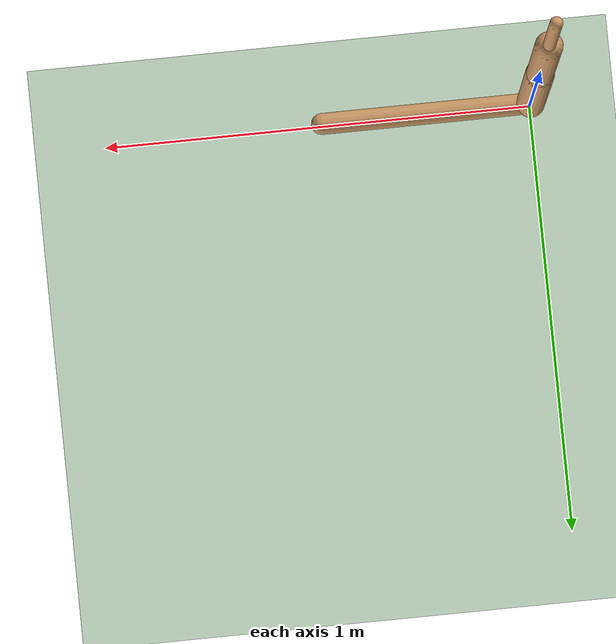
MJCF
<mujoco model="walker2d">
  <compiler angle="degree" inertiafromgeom="true" />
  <default>
    <joint armature="0.01" damping=".1" limited="true" />
    <geom conaffinity="0" condim="3" contype="1" density="1000" friction=".7 .1 .1" rgba="0.8 0.6 .4 1" />
  </default>
  <option integrator="RK4" timestep="0.002" />
  <worldbody>
    <light cutoff="100" diffuse="1 1 1" dir="-0 0 -1.3" directional="true" exponent="1" pos="0 0 1.3" specular=".1 .1 .1" />
    <geom conaffinity="1" condim="3" name="floor" pos="0 0 0" rgba="0.8 0.9 0.8 1" size="40 40 40" type="plane" material="MatPlane" />
    <body name="torso" pos="0 0 1.9402173221111298">
      <camera name="track" mode="trackcom" pos="0 -5 -1.25" xyaxes="1 0 0 0 0 1" />
      <joint armature="0" axis="1 0 0" damping="0" limited="false" name="rootx" pos="0 0 -1.25" stiffness="0" type="slide" />
      <joint armature="0" axis="0 0 1" damping="0" limited="false" name="rootz" pos="0 0 -1.25" ref="1.25" stiffness="0" type="slide" />
      <joint armature="0" axis="0 1 0" damping="0" limited="false" name="rooty" pos="0 0 0" stiffness="0" type="hinge" />
      <geom friction="0.9" name="torso_geom" size="0.01425001211464405 0.27590271830558777" type="capsule" />
      <body name="thigh" pos="0 0 -0.27590271830558777">
        <joint axis="0 -1 0" name="thigh_joint" pos="0 0 0" range="-150 0" type="hinge" />
        <site name="torso_thigh_site" pos="0 0 0" size="0.01" type="sphere" rgba="1 0 0 0.5" />
        <geom friction="0.9" pos="0 0 -0.3667789697647095" name="thigh_geom" size="0.03114299848675728 0.3667789697647095" type="capsule" />
        <body name="leg" pos="0 0 -1.1489362716674805">
          <joint axis="0 -1 0" name="leg_joint" pos="0 0 0.4153783321380615" range="-150 0" type="hinge" />
          <site name="thigh_leg_site" pos="0 0 0.25" size="0.01" type="sphere" rgba="1 0 0 0.5" />
          <geom friction="0.9" name="leg_geom" size="0.03353491052985191 0.4153783321380615" type="capsule" />
          <body name="foot" pos="0.48968029022216797 0 -0.5153783321380615">
            <joint axis="0 -1 0" name="foot_joint" pos="-0.48968029022216797 0 0.1" range="-45 45" type="hinge" />
            <site name="leg_foot_site" pos="-0.2 0 0.1" size="0.01" type="sphere" rgba="1 0 0 0.5" />
            <geom friction="0.9" pos="-0.24484014511108398 0 0.1" quat="0.70710678118654757 0 -0.70710678118654746 0" name="foot_geom" size="0.025144752115011215 0.24484014511108398" type="capsule" />
          </body>
        </body>
      </body>

      <body name="thigh_left" pos="0 0 -0.27590271830558777">
        <joint axis="0 -1 0" name="thigh_left_joint" pos="0 0 0" range="-150 0" type="hinge" />
        <site name="torso_thigh_left_site" pos="0 0 0" size="0.01" type="sphere" rgba="1 0 0 0.5" />
        <geom friction="0.9" name="thigh_left_geom" rgba=".7 .3 .6 1" size="0.03114299848675728 0.3667789697647095" pos="0 0 -0.3667789697647095" type="capsule" />
        <body name="leg_left" pos="0 0 -1.1489362716674805">
          <joint axis="0 -1 0" name="leg_left_joint" pos="0 0 0.4153783321380615" range="-150 0" type="hinge" />
          <site name="thigh_leg_left_site" pos="0 0 0.25" size="0.01" type="sphere" rgba="1 0 0 0.5" />
          <geom friction="0.9" name="leg_left_geom" rgba=".7 .3 .6 1" size="0.03353491052985191 0.4153783321380615" type="capsule" />
          <body name="foot_left" pos="0.48968029022216797 0 -0.5153783321380615">
            <joint axis="0 -1 0" name="foot_left_joint" pos="-0.48968029022216797 0 0.1" range="-45 45" type="hinge" />
            <site name="leg_foot_left_site" pos="-0.2 0 0.1" size="0.01" type="sphere" rgba="1 0 0 0.5" />
            <geom friction="1.9" name="foot_left_geom" rgba=".7 .3 .6 1" size="0.025144752115011215 0.24484014511108398" pos="-0.24484014511108398 0 0.1" type="capsule" quat="0.70710678118654757 0 -0.70710678118654746 0" />
          </body>
        </body>
      </body>
    </body>
  </worldbody>
  <actuator>

    <motor ctrllimited="true" ctrlrange="-1.0 1.0" gear="63.24158541913746" joint="thigh_joint" />
    <motor ctrllimited="true" ctrlrange="-1.0 1.0" gear="116.7826029214321" joint="leg_joint" />
    <motor ctrllimited="true" ctrlrange="-1.0 1.0" gear="43.00063258750284" joint="foot_joint" />
    <motor ctrllimited="true" ctrlrange="-1.0 1.0" gear="63.24158541913746" joint="thigh_left_joint" />
    <motor ctrllimited="true" ctrlrange="-1.0 1.0" gear="116.7826029214321" joint="leg_left_joint" />
    <motor ctrllimited="true" ctrlrange="-1.0 1.0" gear="43.00063258750284" joint="foot_left_joint" />

  </actuator>
    <asset>
        <texture type="skybox" builtin="gradient" rgb1=".4 .5 .6" rgb2="0 0 0" width="100" height="100" />
        <texture builtin="flat" height="1278" mark="cross" markrgb="1 1 1" name="texgeom" random="0.01" rgb1="0.8 0.6 0.4" rgb2="0.8 0.6 0.4" type="cube" width="127" />
        <texture builtin="checker" height="100" name="texplane" rgb1="0 0 0" rgb2="0.8 0.8 0.8" type="2d" width="100" />
        <material name="MatPlane" reflectance="0.5" shininess="1" specular="1" texrepeat="60 60" texture="texplane" />
        <material name="geom" texture="texgeom" texuniform="true" />
    </asset>

  <sensor>
    <force site="torso_thigh_site" name="torso_thigh_sensor" />
    <force site="thigh_leg_site" name="thigh_leg_sensor" />
    <force site="leg_foot_site" name="leg_foot_sensor" />
    <force site="torso_thigh_left_site" name="torso_thigh_left_sensor" />
    <force site="thigh_leg_left_site" name="thigh_leg_left_sensor" />
    <force site="leg_foot_left_site" name="leg_foot_left_sensor" />
  </sensor>
</mujoco>
